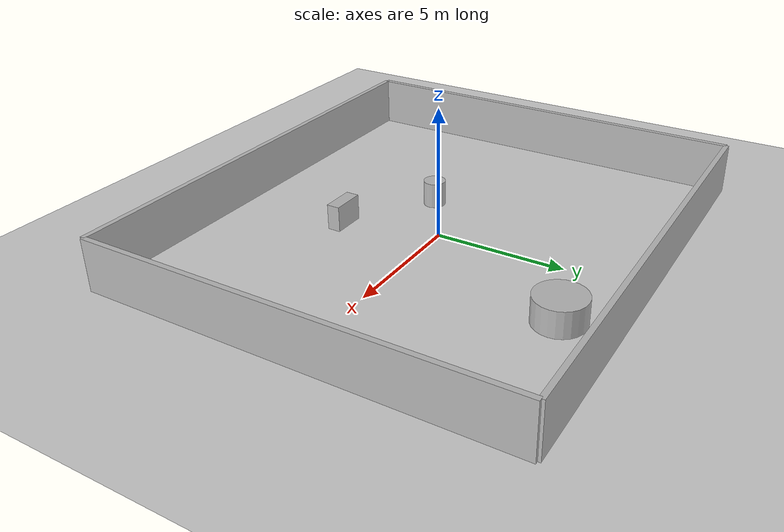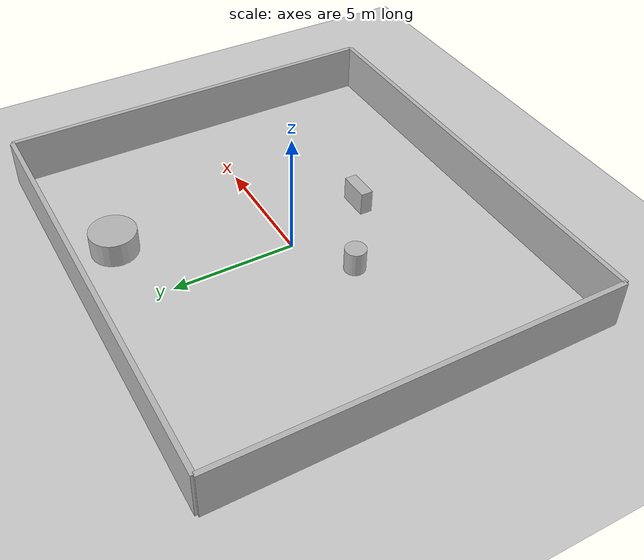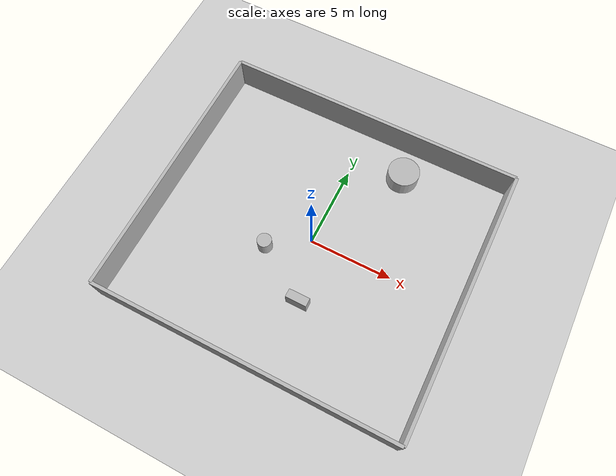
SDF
<?xml version="1.0"?>
<sdf version="1.6">
  <world name="env_85">

    <include><uri>model://ground_plane</uri></include>
    <include><uri>model://sun</uri></include>

    <!-- WALLS -->
    <model name="wall_north"><static>true</static><pose>0 8.092379115006887 1 0 0 0</pose>
      <link name="link"><collision name="collision">
        <geometry><box><size>18.15668492388853 0.2 2</size></box></geometry>
      </collision><visual name="visual">
        <geometry><box><size>18.15668492388853 0.2 2</size></box></geometry>
      </visual></link>
    </model>

    <model name="wall_south"><static>true</static><pose>0 -8.092379115006887 1 0 0 0</pose>
      <link name="link"><collision name="collision">
        <geometry><box><size>18.15668492388853 0.2 2</size></box></geometry>
      </collision><visual name="visual">
        <geometry><box><size>18.15668492388853 0.2 2</size></box></geometry>
      </visual></link>
    </model>

    <model name="wall_east"><static>true</static><pose>9.078342461944265 0 1 0 0 1.57</pose>
      <link name="link"><collision name="collision">
        <geometry><box><size>16.184758230013774 0.2 2</size></box></geometry>
      </collision><visual name="visual">
        <geometry><box><size>16.184758230013774 0.2 2</size></box></geometry>
      </visual></link>
    </model>

    <model name="wall_west"><static>true</static><pose>-9.078342461944265 0 1 0 0 1.57</pose>
      <link name="link"><collision name="collision">
        <geometry><box><size>16.184758230013774 0.2 2</size></box></geometry>
      </collision><visual name="visual">
        <geometry><box><size>16.184758230013774 0.2 2</size></box></geometry>
      </visual></link>
    </model>

    <!-- SENSOR -->

    <model name="lidar_sensor">
      <static>true</static>
      <pose>4.838122770989234 -2.8333180112192666 0.4 0 0 0</pose>
      <link name="link">
        <sensor name="lidar" type="ray">
          <pose>0 0 0 0 0 0</pose>
          <visualize>true</visualize>
          <always_on>true</always_on>
          <update_rate>10</update_rate>
          <ray>
            <scan><horizontal>
              <samples>240</samples>
              <resolution>1</resolution>
              <min_angle>-3.14159</min_angle>
              <max_angle>3.14159</max_angle>
            </horizontal></scan>
            <range><min>0.15</min><max>20.0</max><resolution>0.01</resolution></range>
          </ray>
          <plugin name="lidar_plugin" filename="liblidar_plugin.so"/>
        </sensor>
      </link>
    </model>

    <!-- OBSTACLES -->

    <model name="obstacle_0">
      <static>true</static>
      <pose>3.0643280087416116 6.128042173413176 0.5 0 0 0</pose>
      <link name="link">
        <collision name="collision">
          <geometry><cylinder><radius>0.95</radius><length>1.0</length></cylinder></geometry>
        </collision>
        <visual name="visual">
          <geometry><cylinder><radius>0.95</radius><length>1.0</length></cylinder></geometry>
        </visual>
      </link>
    </model>

    <model name="obstacle_1">
      <static>true</static>
      <pose>-2.240071732781555 -1.483809863035738 0.5 0 0 0</pose>
      <link name="link">
        <collision name="collision">
          <geometry><cylinder><radius>0.43</radius><length>1.0</length></cylinder></geometry>
        </collision>
        <visual name="visual">
          <geometry><cylinder><radius>0.43</radius><length>1.0</length></cylinder></geometry>
        </visual>
      </link>
    </model>

    <model name="obstacle_2">
      <static>true</static>
      <pose>0.9936694558691421 -3.6120859064049857 0.5 0 0 0</pose>
      <link name="link">
        <collision name="collision">
          <geometry><box><size>1.27 0.51 1.0</size></box></geometry>
        </collision>
        <visual name="visual">
          <geometry><box><size>1.27 0.51 1.0</size></box></geometry>
        </visual>
      </link>
    </model>

  </world>
</sdf>
